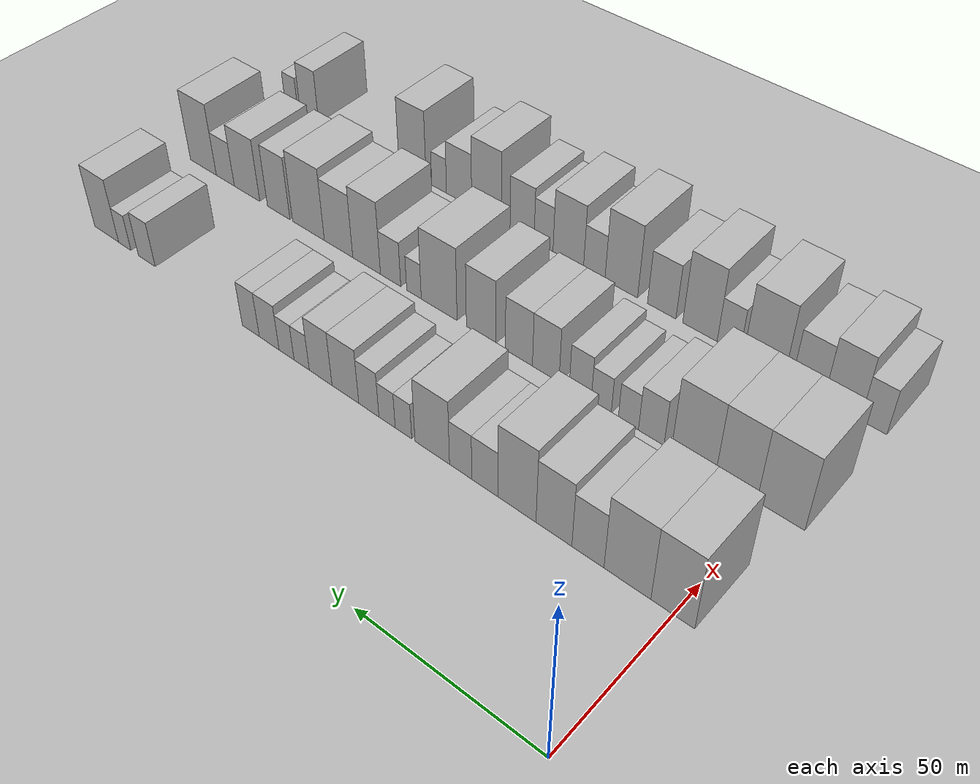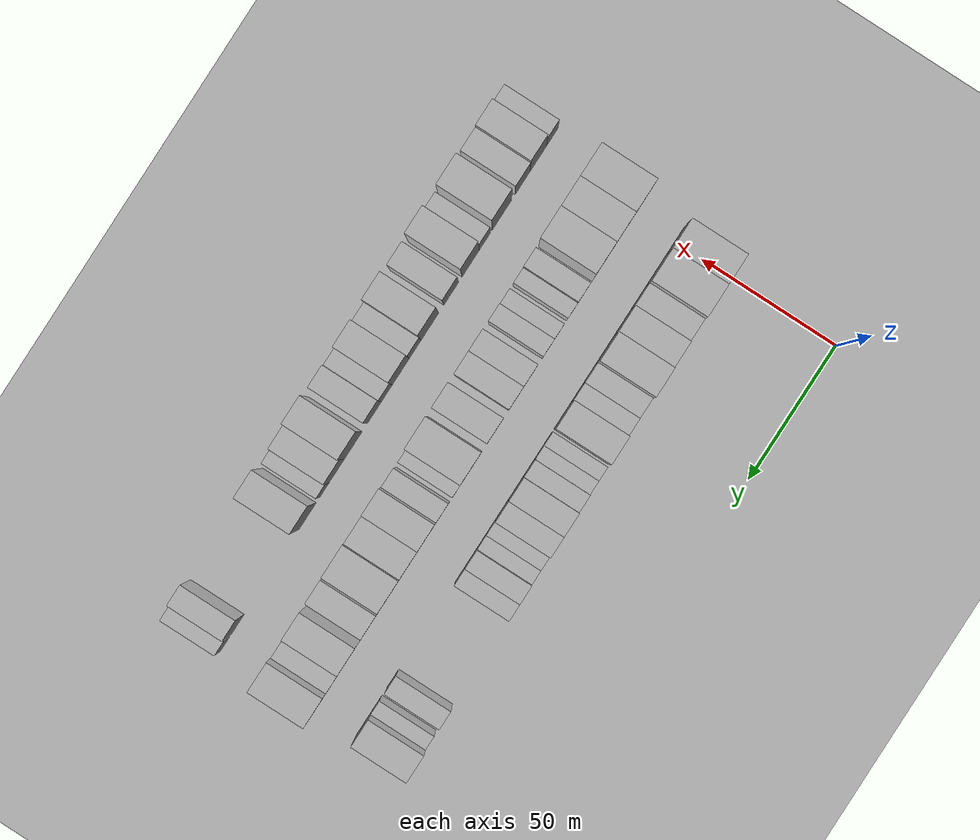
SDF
<sdf version="1.6">
 <world name="default">
  <include><name>ground_plane_1</name><uri>model://HANNAS_ground_plane</uri></include>
  <include>
   <name>ground_plane_2</name>
   <uri>model://HANNAS_ground_plane</uri>
   <pose>100 0 0  0 0 0</pose>
  </include>
  <model name="building_43">
   <static>1</static>
   <pose>50.0000 0.1248 0 0.000000 0.000000 0.000000</pose>
   <link name="link">
    <pose>0 0 12.00 0 0 0</pose>
    <collision name="collision"><geometry><box><size>20.0000 10.6258 24.0000</size></box></geometry></collision>
    <visual name="visual">
     <cast_shadows>0</cast_shadows>
     <geometry><box><size>20.0000 10.6258 24.0000</size></box></geometry>
     <material>
      <script>
       <uri>model://HANNAS_wall/materials/scripts</uri>
       <uri>model://HANNAS_wall/materials/textures</uri>
       <name>vrc/HANNAS_wall</name>
      </script>
     </material>
    </visual>
   </link>
  </model>
  <model name="building_44">
   <static>1</static>
   <pose>50.0000 11.3417 0 0.000000 0.000000 0.000000</pose>
   <link name="link">
    <pose>0 0 12.00 0 0 0</pose>
    <collision name="collision"><geometry><box><size>20.0000 11.8079 24.0000</size></box></geometry></collision>
    <visual name="visual">
     <cast_shadows>0</cast_shadows>
     <geometry><box><size>20.0000 11.8079 24.0000</size></box></geometry>
     <material>
      <script>
       <uri>model://HANNAS_wall/materials/scripts</uri>
       <uri>model://HANNAS_wall/materials/textures</uri>
       <name>vrc/HANNAS_wall</name>
      </script>
     </material>
    </visual>
   </link>
  </model>
  <model name="building_45">
   <static>1</static>
   <pose>50.0000 21.4188 0 0.000000 0.000000 0.000000</pose>
   <link name="link">
    <pose>0 0 9.00 0 0 0</pose>
    <collision name="collision"><geometry><box><size>20.0000 8.3464 18.0000</size></box></geometry></collision>
    <visual name="visual">
     <cast_shadows>0</cast_shadows>
     <geometry><box><size>20.0000 8.3464 18.0000</size></box></geometry>
     <material>
      <script>
       <uri>model://HANNAS_wall/materials/scripts</uri>
       <uri>model://HANNAS_wall/materials/textures</uri>
       <name>vrc/HANNAS_wall</name>
      </script>
     </material>
    </visual>
   </link>
  </model>
  <model name="building_46">
   <static>1</static>
   <pose>50.0000 30.3973 0 0.000000 0.000000 0.000000</pose>
   <link name="link">
    <pose>0 0 10.50 0 0 0</pose>
    <collision name="collision"><geometry><box><size>20.0000 9.6105 21.0000</size></box></geometry></collision>
    <visual name="visual">
     <cast_shadows>0</cast_shadows>
     <geometry><box><size>20.0000 9.6105 21.0000</size></box></geometry>
     <material>
      <script>
       <uri>model://HANNAS_wall/materials/scripts</uri>
       <uri>model://HANNAS_wall/materials/textures</uri>
       <name>vrc/HANNAS_wall</name>
      </script>
     </material>
    </visual>
   </link>
  </model>
  <model name="building_47">
   <static>1</static>
   <pose>50.0000 40.4916 0 0.000000 0.000000 0.000000</pose>
   <link name="link">
    <pose>0 0 12.00 0 0 0</pose>
    <collision name="collision"><geometry><box><size>20.0000 10.5781 24.0000</size></box></geometry></collision>
    <visual name="visual">
     <cast_shadows>0</cast_shadows>
     <geometry><box><size>20.0000 10.5781 24.0000</size></box></geometry>
     <material>
      <script>
       <uri>model://HANNAS_wall/materials/scripts</uri>
       <uri>model://HANNAS_wall/materials/textures</uri>
       <name>vrc/HANNAS_wall</name>
      </script>
     </material>
    </visual>
   </link>
  </model>
  <model name="building_48">
   <static>1</static>
   <pose>50.0000 49.4709 0 0.000000 0.000000 0.000000</pose>
   <link name="link">
    <pose>0 0 7.50 0 0 0</pose>
    <collision name="collision"><geometry><box><size>20.0000 7.3806 15.0000</size></box></geometry></collision>
    <visual name="visual">
     <cast_shadows>0</cast_shadows>
     <geometry><box><size>20.0000 7.3806 15.0000</size></box></geometry>
     <material>
      <script>
       <uri>model://HANNAS_wall/materials/scripts</uri>
       <uri>model://HANNAS_wall/materials/textures</uri>
       <name>vrc/HANNAS_wall</name>
      </script>
     </material>
    </visual>
   </link>
  </model>
  <model name="building_49">
   <static>1</static>
   <pose>50.0000 56.3877 0 0.000000 0.000000 0.000000</pose>
   <link name="link">
    <pose>0 0 7.50 0 0 0</pose>
    <collision name="collision"><geometry><box><size>20.0000 6.4530 15.0000</size></box></geometry></collision>
    <visual name="visual">
     <cast_shadows>0</cast_shadows>
     <geometry><box><size>20.0000 6.4530 15.0000</size></box></geometry>
     <material>
      <script>
       <uri>model://HANNAS_wall/materials/scripts</uri>
       <uri>model://HANNAS_wall/materials/textures</uri>
       <name>vrc/HANNAS_wall</name>
      </script>
     </material>
    </visual>
   </link>
  </model>
  <model name="building_50">
   <static>1</static>
   <pose>50.0000 64.7679 0 0.000000 0.000000 0.000000</pose>
   <link name="link">
    <pose>0 0 10.50 0 0 0</pose>
    <collision name="collision"><geometry><box><size>20.0000 10.3074 21.0000</size></box></geometry></collision>
    <visual name="visual">
     <cast_shadows>0</cast_shadows>
     <geometry><box><size>20.0000 10.3074 21.0000</size></box></geometry>
     <material>
      <script>
       <uri>model://HANNAS_wall/materials/scripts</uri>
       <uri>model://HANNAS_wall/materials/textures</uri>
       <name>vrc/HANNAS_wall</name>
      </script>
     </material>
    </visual>
   </link>
  </model>
  <model name="building_51">
   <static>1</static>
   <pose>50.0000 73.4463 0 0.000000 0.000000 0.000000</pose>
   <link name="link">
    <pose>0 0 6.00 0 0 0</pose>
    <collision name="collision"><geometry><box><size>20.0000 5.0494 12.0000</size></box></geometry></collision>
    <visual name="visual">
     <cast_shadows>0</cast_shadows>
     <geometry><box><size>20.0000 5.0494 12.0000</size></box></geometry>
     <material>
      <script>
       <uri>model://HANNAS_wall/materials/scripts</uri>
       <uri>model://HANNAS_wall/materials/textures</uri>
       <name>vrc/HANNAS_wall</name>
      </script>
     </material>
    </visual>
   </link>
  </model>
  <model name="building_52">
   <static>1</static>
   <pose>50.0000 78.5021 0 0.000000 0.000000 0.000000</pose>
   <link name="link">
    <pose>0 0 6.00 0 0 0</pose>
    <collision name="collision"><geometry><box><size>20.0000 5.0623 12.0000</size></box></geometry></collision>
    <visual name="visual">
     <cast_shadows>0</cast_shadows>
     <geometry><box><size>20.0000 5.0623 12.0000</size></box></geometry>
     <material>
      <script>
       <uri>model://HANNAS_wall/materials/scripts</uri>
       <uri>model://HANNAS_wall/materials/textures</uri>
       <name>vrc/HANNAS_wall</name>
      </script>
     </material>
    </visual>
   </link>
  </model>
  <model name="building_53">
   <static>1</static>
   <pose>50.0000 84.2243 0 0.000000 0.000000 0.000000</pose>
   <link name="link">
    <pose>0 0 7.50 0 0 0</pose>
    <collision name="collision"><geometry><box><size>20.0000 6.3821 15.0000</size></box></geometry></collision>
    <visual name="visual">
     <cast_shadows>0</cast_shadows>
     <geometry><box><size>20.0000 6.3821 15.0000</size></box></geometry>
     <material>
      <script>
       <uri>model://HANNAS_wall/materials/scripts</uri>
       <uri>model://HANNAS_wall/materials/textures</uri>
       <name>vrc/HANNAS_wall</name>
      </script>
     </material>
    </visual>
   </link>
  </model>
  <model name="building_54">
   <static>1</static>
   <pose>50.0000 91.7414 0 0.000000 0.000000 0.000000</pose>
   <link name="link">
    <pose>0 0 9.00 0 0 0</pose>
    <collision name="collision"><geometry><box><size>20.0000 8.6520 18.0000</size></box></geometry></collision>
    <visual name="visual">
     <cast_shadows>0</cast_shadows>
     <geometry><box><size>20.0000 8.6520 18.0000</size></box></geometry>
     <material>
      <script>
       <uri>model://HANNAS_wall/materials/scripts</uri>
       <uri>model://HANNAS_wall/materials/textures</uri>
       <name>vrc/HANNAS_wall</name>
      </script>
     </material>
    </visual>
   </link>
  </model>
  <model name="building_55">
   <static>1</static>
   <pose>50.0000 99.8377 0 0.000000 0.000000 0.000000</pose>
   <link name="link">
    <pose>0 0 9.00 0 0 0</pose>
    <collision name="collision"><geometry><box><size>20.0000 7.5408 18.0000</size></box></geometry></collision>
    <visual name="visual">
     <cast_shadows>0</cast_shadows>
     <geometry><box><size>20.0000 7.5408 18.0000</size></box></geometry>
     <material>
      <script>
       <uri>model://HANNAS_wall/materials/scripts</uri>
       <uri>model://HANNAS_wall/materials/textures</uri>
       <name>vrc/HANNAS_wall</name>
      </script>
     </material>
    </visual>
   </link>
  </model>
  <model name="building_56">
   <static>1</static>
   <pose>50.0000 106.1749 0 0.000000 0.000000 0.000000</pose>
   <link name="link">
    <pose>0 0 6.00 0 0 0</pose>
    <collision name="collision"><geometry><box><size>20.0000 5.1335 12.0000</size></box></geometry></collision>
    <visual name="visual">
     <cast_shadows>0</cast_shadows>
     <geometry><box><size>20.0000 5.1335 12.0000</size></box></geometry>
     <material>
      <script>
       <uri>model://HANNAS_wall/materials/scripts</uri>
       <uri>model://HANNAS_wall/materials/textures</uri>
       <name>vrc/HANNAS_wall</name>
      </script>
     </material>
    </visual>
   </link>
  </model>
  <model name="building_57">
   <static>1</static>
   <pose>50.0000 111.3071 0 0.000000 0.000000 0.000000</pose>
   <link name="link">
    <pose>0 0 6.00 0 0 0</pose>
    <collision name="collision"><geometry><box><size>20.0000 5.1310 12.0000</size></box></geometry></collision>
    <visual name="visual">
     <cast_shadows>0</cast_shadows>
     <geometry><box><size>20.0000 5.1310 12.0000</size></box></geometry>
     <material>
      <script>
       <uri>model://HANNAS_wall/materials/scripts</uri>
       <uri>model://HANNAS_wall/materials/textures</uri>
       <name>vrc/HANNAS_wall</name>
      </script>
     </material>
    </visual>
   </link>
  </model>
  <model name="building_58">
   <static>1</static>
   <pose>50.0000 117.3159 0 0.000000 0.000000 0.000000</pose>
   <link name="link">
    <pose>0 0 7.50 0 0 0</pose>
    <collision name="collision"><geometry><box><size>20.0000 6.8867 15.0000</size></box></geometry></collision>
    <visual name="visual">
     <cast_shadows>0</cast_shadows>
     <geometry><box><size>20.0000 6.8867 15.0000</size></box></geometry>
     <material>
      <script>
       <uri>model://HANNAS_wall/materials/scripts</uri>
       <uri>model://HANNAS_wall/materials/textures</uri>
       <name>vrc/HANNAS_wall</name>
      </script>
     </material>
    </visual>
   </link>
  </model>
  <model name="building_59">
   <static>1</static>
   <pose>50.0000 123.7783 0 0.000000 0.000000 0.000000</pose>
   <link name="link">
    <pose>0 0 7.50 0 0 0</pose>
    <collision name="collision"><geometry><box><size>20.0000 6.0380 15.0000</size></box></geometry></collision>
    <visual name="visual">
     <cast_shadows>0</cast_shadows>
     <geometry><box><size>20.0000 6.0380 15.0000</size></box></geometry>
     <material>
      <script>
       <uri>model://HANNAS_wall/materials/scripts</uri>
       <uri>model://HANNAS_wall/materials/textures</uri>
       <name>vrc/HANNAS_wall</name>
      </script>
     </material>
    </visual>
   </link>
  </model>
  <model name="building_60">
   <static>1</static>
   <pose>50.0000 162.7723 0 0.000000 0.000000 0.000000</pose>
   <link name="link">
    <pose>0 0 7.50 0 0 0</pose>
    <collision name="collision"><geometry><box><size>20.0000 6.6500 15.0000</size></box></geometry></collision>
    <visual name="visual">
     <cast_shadows>0</cast_shadows>
     <geometry><box><size>20.0000 6.6500 15.0000</size></box></geometry>
     <material>
      <script>
       <uri>model://HANNAS_wall/materials/scripts</uri>
       <uri>model://HANNAS_wall/materials/textures</uri>
       <name>vrc/HANNAS_wall</name>
      </script>
     </material>
    </visual>
   </link>
  </model>
  <model name="building_61">
   <static>1</static>
   <pose>50.0000 171.5801 0 0.000000 0.000000 0.000000</pose>
   <link name="link">
    <pose>0 0 6.00 0 0 0</pose>
    <collision name="collision"><geometry><box><size>20.0000 4.9657 12.0000</size></box></geometry></collision>
    <visual name="visual">
     <cast_shadows>0</cast_shadows>
     <geometry><box><size>20.0000 4.9657 12.0000</size></box></geometry>
     <material>
      <script>
       <uri>model://HANNAS_wall/materials/scripts</uri>
       <uri>model://HANNAS_wall/materials/textures</uri>
       <name>vrc/HANNAS_wall</name>
      </script>
     </material>
    </visual>
   </link>
  </model>
  <model name="building_62">
   <static>1</static>
   <pose>50.0000 178.9622 0 0.000000 0.000000 0.000000</pose>
   <link name="link">
    <pose>0 0 10.50 0 0 0</pose>
    <collision name="collision"><geometry><box><size>20.0000 9.7984 21.0000</size></box></geometry></collision>
    <visual name="visual">
     <cast_shadows>0</cast_shadows>
     <geometry><box><size>20.0000 9.7984 21.0000</size></box></geometry>
     <material>
      <script>
       <uri>model://HANNAS_wall/materials/scripts</uri>
       <uri>model://HANNAS_wall/materials/textures</uri>
       <name>vrc/HANNAS_wall</name>
      </script>
     </material>
    </visual>
   </link>
  </model>
  <model name="building_123">
   <static>1</static>
   <pose>85.0000 -3.5434 0 0.000000 0.000000 0.000000</pose>
   <link name="link">
    <pose>0 0 12.00 0 0 0</pose>
    <collision name="collision"><geometry><box><size>20.0000 11.8612 24.0000</size></box></geometry></collision>
    <visual name="visual">
     <cast_shadows>0</cast_shadows>
     <geometry><box><size>20.0000 11.8612 24.0000</size></box></geometry>
     <material>
      <script>
       <uri>model://HANNAS_wall/materials/scripts</uri>
       <uri>model://HANNAS_wall/materials/textures</uri>
       <name>vrc/HANNAS_wall</name>
      </script>
     </material>
    </visual>
   </link>
  </model>
  <model name="building_124">
   <static>1</static>
   <pose>85.0000 7.7006 0 0.000000 0.000000 0.000000</pose>
   <link name="link">
    <pose>0 0 12.00 0 0 0</pose>
    <collision name="collision"><geometry><box><size>20.0000 10.6269 24.0000</size></box></geometry></collision>
    <visual name="visual">
     <cast_shadows>0</cast_shadows>
     <geometry><box><size>20.0000 10.6269 24.0000</size></box></geometry>
     <material>
      <script>
       <uri>model://HANNAS_wall/materials/scripts</uri>
       <uri>model://HANNAS_wall/materials/textures</uri>
       <name>vrc/HANNAS_wall</name>
      </script>
     </material>
    </visual>
   </link>
  </model>
  <model name="building_125">
   <static>1</static>
   <pose>85.0000 18.8179 0 0.000000 0.000000 0.000000</pose>
   <link name="link">
    <pose>0 0 12.00 0 0 0</pose>
    <collision name="collision"><geometry><box><size>20.0000 11.6077 24.0000</size></box></geometry></collision>
    <visual name="visual">
     <cast_shadows>0</cast_shadows>
     <geometry><box><size>20.0000 11.6077 24.0000</size></box></geometry>
     <material>
      <script>
       <uri>model://HANNAS_wall/materials/scripts</uri>
       <uri>model://HANNAS_wall/materials/textures</uri>
       <name>vrc/HANNAS_wall</name>
      </script>
     </material>
    </visual>
   </link>
  </model>
  <model name="building_126">
   <static>1</static>
   <pose>85.0000 30.1323 0 0.000000 0.000000 0.000000</pose>
   <link name="link">
    <pose>0 0 7.50 0 0 0</pose>
    <collision name="collision"><geometry><box><size>20.0000 7.0212 15.0000</size></box></geometry></collision>
    <visual name="visual">
     <cast_shadows>0</cast_shadows>
     <geometry><box><size>20.0000 7.0212 15.0000</size></box></geometry>
     <material>
      <script>
       <uri>model://HANNAS_wall/materials/scripts</uri>
       <uri>model://HANNAS_wall/materials/textures</uri>
       <name>vrc/HANNAS_wall</name>
      </script>
     </material>
    </visual>
   </link>
  </model>
  <model name="building_127">
   <static>1</static>
   <pose>85.0000 36.4555 0 0.000000 0.000000 0.000000</pose>
   <link name="link">
    <pose>0 0 6.00 0 0 0</pose>
    <collision name="collision"><geometry><box><size>20.0000 5.6251 12.0000</size></box></geometry></collision>
    <visual name="visual">
     <cast_shadows>0</cast_shadows>
     <geometry><box><size>20.0000 5.6251 12.0000</size></box></geometry>
     <material>
      <script>
       <uri>model://HANNAS_wall/materials/scripts</uri>
       <uri>model://HANNAS_wall/materials/textures</uri>
       <name>vrc/HANNAS_wall</name>
      </script>
     </material>
    </visual>
   </link>
  </model>
  <model name="building_128">
   <static>1</static>
   <pose>85.0000 44.1290 0 0.000000 0.000000 0.000000</pose>
   <link name="link">
    <pose>0 0 6.00 0 0 0</pose>
    <collision name="collision"><geometry><box><size>20.0000 5.7220 12.0000</size></box></geometry></collision>
    <visual name="visual">
     <cast_shadows>0</cast_shadows>
     <geometry><box><size>20.0000 5.7220 12.0000</size></box></geometry>
     <material>
      <script>
       <uri>model://HANNAS_wall/materials/scripts</uri>
       <uri>model://HANNAS_wall/materials/textures</uri>
       <name>vrc/HANNAS_wall</name>
      </script>
     </material>
    </visual>
   </link>
  </model>
  <model name="building_129">
   <static>1</static>
   <pose>85.0000 50.1951 0 0.000000 0.000000 0.000000</pose>
   <link name="link">
    <pose>0 0 7.50 0 0 0</pose>
    <collision name="collision"><geometry><box><size>20.0000 6.4101 15.0000</size></box></geometry></collision>
    <visual name="visual">
     <cast_shadows>0</cast_shadows>
     <geometry><box><size>20.0000 6.4101 15.0000</size></box></geometry>
     <material>
      <script>
       <uri>model://HANNAS_wall/materials/scripts</uri>
       <uri>model://HANNAS_wall/materials/textures</uri>
       <name>vrc/HANNAS_wall</name>
      </script>
     </material>
    </visual>
   </link>
  </model>
  <model name="building_130">
   <static>1</static>
   <pose>85.0000 60.3814 0 0.000000 0.000000 0.000000</pose>
   <link name="link">
    <pose>0 0 9.00 0 0 0</pose>
    <collision name="collision"><geometry><box><size>20.0000 7.9625 18.0000</size></box></geometry></collision>
    <visual name="visual">
     <cast_shadows>0</cast_shadows>
     <geometry><box><size>20.0000 7.9625 18.0000</size></box></geometry>
     <material>
      <script>
       <uri>model://HANNAS_wall/materials/scripts</uri>
       <uri>model://HANNAS_wall/materials/textures</uri>
       <name>vrc/HANNAS_wall</name>
      </script>
     </material>
    </visual>
   </link>
  </model>
  <model name="building_131">
   <static>1</static>
   <pose>85.0000 68.5442 0 0.000000 0.000000 0.000000</pose>
   <link name="link">
    <pose>0 0 9.00 0 0 0</pose>
    <collision name="collision"><geometry><box><size>20.0000 8.3631 18.0000</size></box></geometry></collision>
    <visual name="visual">
     <cast_shadows>0</cast_shadows>
     <geometry><box><size>20.0000 8.3631 18.0000</size></box></geometry>
     <material>
      <script>
       <uri>model://HANNAS_wall/materials/scripts</uri>
       <uri>model://HANNAS_wall/materials/textures</uri>
       <name>vrc/HANNAS_wall</name>
      </script>
     </material>
    </visual>
   </link>
  </model>
  <model name="building_132">
   <static>1</static>
   <pose>85.0000 80.3539 0 0.000000 0.000000 0.000000</pose>
   <link name="link">
    <pose>0 0 10.50 0 0 0</pose>
    <collision name="collision"><geometry><box><size>20.0000 9.2563 21.0000</size></box></geometry></collision>
    <visual name="visual">
     <cast_shadows>0</cast_shadows>
     <geometry><box><size>20.0000 9.2563 21.0000</size></box></geometry>
     <material>
      <script>
       <uri>model://HANNAS_wall/materials/scripts</uri>
       <uri>model://HANNAS_wall/materials/textures</uri>
       <name>vrc/HANNAS_wall</name>
      </script>
     </material>
    </visual>
   </link>
  </model>
  <model name="building_133">
   <static>1</static>
   <pose>85.0000 93.8886 0 0.000000 0.000000 0.000000</pose>
   <link name="link">
    <pose>0 0 12.00 0 0 0</pose>
    <collision name="collision"><geometry><box><size>20.0000 11.8132 24.0000</size></box></geometry></collision>
    <visual name="visual">
     <cast_shadows>0</cast_shadows>
     <geometry><box><size>20.0000 11.8132 24.0000</size></box></geometry>
     <material>
      <script>
       <uri>model://HANNAS_wall/materials/scripts</uri>
       <uri>model://HANNAS_wall/materials/textures</uri>
       <name>vrc/HANNAS_wall</name>
      </script>
     </material>
    </visual>
   </link>
  </model>
  <model name="building_134">
   <static>1</static>
   <pose>85.0000 102.2550 0 0.000000 0.000000 0.000000</pose>
   <link name="link">
    <pose>0 0 6.00 0 0 0</pose>
    <collision name="collision"><geometry><box><size>20.0000 4.9196 12.0000</size></box></geometry></collision>
    <visual name="visual">
     <cast_shadows>0</cast_shadows>
     <geometry><box><size>20.0000 4.9196 12.0000</size></box></geometry>
     <material>
      <script>
       <uri>model://HANNAS_wall/materials/scripts</uri>
       <uri>model://HANNAS_wall/materials/textures</uri>
       <name>vrc/HANNAS_wall</name>
      </script>
     </material>
    </visual>
   </link>
  </model>
  <model name="building_135">
   <static>1</static>
   <pose>85.0000 110.2170 0 0.000000 0.000000 0.000000</pose>
   <link name="link">
    <pose>0 0 7.50 0 0 0</pose>
    <collision name="collision"><geometry><box><size>20.0000 7.0044 15.0000</size></box></geometry></collision>
    <visual name="visual">
     <cast_shadows>0</cast_shadows>
     <geometry><box><size>20.0000 7.0044 15.0000</size></box></geometry>
     <material>
      <script>
       <uri>model://HANNAS_wall/materials/scripts</uri>
       <uri>model://HANNAS_wall/materials/textures</uri>
       <name>vrc/HANNAS_wall</name>
      </script>
     </material>
    </visual>
   </link>
  </model>
  <model name="building_136">
   <static>1</static>
   <pose>85.0000 118.5995 0 0.000000 0.000000 0.000000</pose>
   <link name="link">
    <pose>0 0 12.00 0 0 0</pose>
    <collision name="collision"><geometry><box><size>20.0000 9.7606 24.0000</size></box></geometry></collision>
    <visual name="visual">
     <cast_shadows>0</cast_shadows>
     <geometry><box><size>20.0000 9.7606 24.0000</size></box></geometry>
     <material>
      <script>
       <uri>model://HANNAS_wall/materials/scripts</uri>
       <uri>model://HANNAS_wall/materials/textures</uri>
       <name>vrc/HANNAS_wall</name>
      </script>
     </material>
    </visual>
   </link>
  </model>
  <model name="building_137">
   <static>1</static>
   <pose>85.0000 128.6239 0 0.000000 0.000000 0.000000</pose>
   <link name="link">
    <pose>0 0 10.50 0 0 0</pose>
    <collision name="collision"><geometry><box><size>20.0000 10.2883 21.0000</size></box></geometry></collision>
    <visual name="visual">
     <cast_shadows>0</cast_shadows>
     <geometry><box><size>20.0000 10.2883 21.0000</size></box></geometry>
     <material>
      <script>
       <uri>model://HANNAS_wall/materials/scripts</uri>
       <uri>model://HANNAS_wall/materials/textures</uri>
       <name>vrc/HANNAS_wall</name>
      </script>
     </material>
    </visual>
   </link>
  </model>
  <model name="building_138">
   <static>1</static>
   <pose>85.0000 139.6937 0 0.000000 0.000000 0.000000</pose>
   <link name="link">
    <pose>0 0 12.00 0 0 0</pose>
    <collision name="collision"><geometry><box><size>20.0000 11.8513 24.0000</size></box></geometry></collision>
    <visual name="visual">
     <cast_shadows>0</cast_shadows>
     <geometry><box><size>20.0000 11.8513 24.0000</size></box></geometry>
     <material>
      <script>
       <uri>model://HANNAS_wall/materials/scripts</uri>
       <uri>model://HANNAS_wall/materials/textures</uri>
       <name>vrc/HANNAS_wall</name>
      </script>
     </material>
    </visual>
   </link>
  </model>
  <model name="building_139">
   <static>1</static>
   <pose>85.0000 150.9417 0 0.000000 0.000000 0.000000</pose>
   <link name="link">
    <pose>0 0 10.50 0 0 0</pose>
    <collision name="collision"><geometry><box><size>20.0000 8.6446 21.0000</size></box></geometry></collision>
    <visual name="visual">
     <cast_shadows>0</cast_shadows>
     <geometry><box><size>20.0000 8.6446 21.0000</size></box></geometry>
     <material>
      <script>
       <uri>model://HANNAS_wall/materials/scripts</uri>
       <uri>model://HANNAS_wall/materials/textures</uri>
       <name>vrc/HANNAS_wall</name>
      </script>
     </material>
    </visual>
   </link>
  </model>
  <model name="building_140">
   <static>1</static>
   <pose>85.0000 163.3012 0 0.000000 0.000000 0.000000</pose>
   <link name="link">
    <pose>0 0 10.50 0 0 0</pose>
    <collision name="collision"><geometry><box><size>20.0000 10.0744 21.0000</size></box></geometry></collision>
    <visual name="visual">
     <cast_shadows>0</cast_shadows>
     <geometry><box><size>20.0000 10.0744 21.0000</size></box></geometry>
     <material>
      <script>
       <uri>model://HANNAS_wall/materials/scripts</uri>
       <uri>model://HANNAS_wall/materials/textures</uri>
       <name>vrc/HANNAS_wall</name>
      </script>
     </material>
    </visual>
   </link>
  </model>
  <model name="building_141">
   <static>1</static>
   <pose>85.0000 171.9812 0 0.000000 0.000000 0.000000</pose>
   <link name="link">
    <pose>0 0 7.50 0 0 0</pose>
    <collision name="collision"><geometry><box><size>20.0000 7.2855 15.0000</size></box></geometry></collision>
    <visual name="visual">
     <cast_shadows>0</cast_shadows>
     <geometry><box><size>20.0000 7.2855 15.0000</size></box></geometry>
     <material>
      <script>
       <uri>model://HANNAS_wall/materials/scripts</uri>
       <uri>model://HANNAS_wall/materials/textures</uri>
       <name>vrc/HANNAS_wall</name>
      </script>
     </material>
    </visual>
   </link>
  </model>
  <model name="building_142">
   <static>1</static>
   <pose>85.0000 180.9536 0 0.000000 0.000000 0.000000</pose>
   <link name="link">
    <pose>0 0 12.00 0 0 0</pose>
    <collision name="collision"><geometry><box><size>20.0000 10.6593 24.0000</size></box></geometry></collision>
    <visual name="visual">
     <cast_shadows>0</cast_shadows>
     <geometry><box><size>20.0000 10.6593 24.0000</size></box></geometry>
     <material>
      <script>
       <uri>model://HANNAS_wall/materials/scripts</uri>
       <uri>model://HANNAS_wall/materials/textures</uri>
       <name>vrc/HANNAS_wall</name>
      </script>
     </material>
    </visual>
   </link>
  </model>
  <model name="building_198">
   <static>1</static>
   <pose>120.0000 -6.5001 0 0.000000 0.000000 0.000000</pose>
   <link name="link">
    <pose>0 0 7.50 0 0 0</pose>
    <collision name="collision"><geometry><box><size>20.0000 6.6826 15.0000</size></box></geometry></collision>
    <visual name="visual">
     <cast_shadows>0</cast_shadows>
     <geometry><box><size>20.0000 6.6826 15.0000</size></box></geometry>
     <material>
      <script>
       <uri>model://HANNAS_wall/materials/scripts</uri>
       <uri>model://HANNAS_wall/materials/textures</uri>
       <name>vrc/HANNAS_wall</name>
      </script>
     </material>
    </visual>
   </link>
  </model>
  <model name="building_199">
   <static>1</static>
   <pose>120.0000 1.5913 0 0.000000 0.000000 0.000000</pose>
   <link name="link">
    <pose>0 0 10.50 0 0 0</pose>
    <collision name="collision"><geometry><box><size>20.0000 9.5003 21.0000</size></box></geometry></collision>
    <visual name="visual">
     <cast_shadows>0</cast_shadows>
     <geometry><box><size>20.0000 9.5003 21.0000</size></box></geometry>
     <material>
      <script>
       <uri>model://HANNAS_wall/materials/scripts</uri>
       <uri>model://HANNAS_wall/materials/textures</uri>
       <name>vrc/HANNAS_wall</name>
      </script>
     </material>
    </visual>
   </link>
  </model>
  <model name="building_200">
   <static>1</static>
   <pose>120.0000 10.6098 0 0.000000 0.000000 0.000000</pose>
   <link name="link">
    <pose>0 0 9.00 0 0 0</pose>
    <collision name="collision"><geometry><box><size>20.0000 8.5367 18.0000</size></box></geometry></collision>
    <visual name="visual">
     <cast_shadows>0</cast_shadows>
     <geometry><box><size>20.0000 8.5367 18.0000</size></box></geometry>
     <material>
      <script>
       <uri>model://HANNAS_wall/materials/scripts</uri>
       <uri>model://HANNAS_wall/materials/textures</uri>
       <name>vrc/HANNAS_wall</name>
      </script>
     </material>
    </visual>
   </link>
  </model>
  <model name="building_201">
   <static>1</static>
   <pose>120.0000 22.5046 0 0.000000 0.000000 0.000000</pose>
   <link name="link">
    <pose>0 0 12.00 0 0 0</pose>
    <collision name="collision"><geometry><box><size>20.0000 11.2528 24.0000</size></box></geometry></collision>
    <visual name="visual">
     <cast_shadows>0</cast_shadows>
     <geometry><box><size>20.0000 11.2528 24.0000</size></box></geometry>
     <material>
      <script>
       <uri>model://HANNAS_wall/materials/scripts</uri>
       <uri>model://HANNAS_wall/materials/textures</uri>
       <name>vrc/HANNAS_wall</name>
      </script>
     </material>
    </visual>
   </link>
  </model>
  <model name="building_202">
   <static>1</static>
   <pose>120.0000 32.3327 0 0.000000 0.000000 0.000000</pose>
   <link name="link">
    <pose>0 0 7.50 0 0 0</pose>
    <collision name="collision"><geometry><box><size>20.0000 6.4035 15.0000</size></box></geometry></collision>
    <visual name="visual">
     <cast_shadows>0</cast_shadows>
     <geometry><box><size>20.0000 6.4035 15.0000</size></box></geometry>
     <material>
      <script>
       <uri>model://HANNAS_wall/materials/scripts</uri>
       <uri>model://HANNAS_wall/materials/textures</uri>
       <name>vrc/HANNAS_wall</name>
      </script>
     </material>
    </visual>
   </link>
  </model>
  <model name="building_203">
   <static>1</static>
   <pose>120.0000 40.5234 0 0.000000 0.000000 0.000000</pose>
   <link name="link">
    <pose>0 0 12.00 0 0 0</pose>
    <collision name="collision"><geometry><box><size>20.0000 9.9778 24.0000</size></box></geometry></collision>
    <visual name="visual">
     <cast_shadows>0</cast_shadows>
     <geometry><box><size>20.0000 9.9778 24.0000</size></box></geometry>
     <material>
      <script>
       <uri>model://HANNAS_wall/materials/scripts</uri>
       <uri>model://HANNAS_wall/materials/textures</uri>
       <name>vrc/HANNAS_wall</name>
      </script>
     </material>
    </visual>
   </link>
  </model>
  <model name="building_204">
   <static>1</static>
   <pose>120.0000 51.7622 0 0.000000 0.000000 0.000000</pose>
   <link name="link">
    <pose>0 0 9.00 0 0 0</pose>
    <collision name="collision"><geometry><box><size>20.0000 8.4999 18.0000</size></box></geometry></collision>
    <visual name="visual">
     <cast_shadows>0</cast_shadows>
     <geometry><box><size>20.0000 8.4999 18.0000</size></box></geometry>
     <material>
      <script>
       <uri>model://HANNAS_wall/materials/scripts</uri>
       <uri>model://HANNAS_wall/materials/textures</uri>
       <name>vrc/HANNAS_wall</name>
      </script>
     </material>
    </visual>
   </link>
  </model>
  <model name="building_205">
   <static>1</static>
   <pose>120.0000 64.0637 0 0.000000 0.000000 0.000000</pose>
   <link name="link">
    <pose>0 0 12.00 0 0 0</pose>
    <collision name="collision"><geometry><box><size>20.0000 10.1029 24.0000</size></box></geometry></collision>
    <visual name="visual">
     <cast_shadows>0</cast_shadows>
     <geometry><box><size>20.0000 10.1029 24.0000</size></box></geometry>
     <material>
      <script>
       <uri>model://HANNAS_wall/materials/scripts</uri>
       <uri>model://HANNAS_wall/materials/textures</uri>
       <name>vrc/HANNAS_wall</name>
      </script>
     </material>
    </visual>
   </link>
  </model>
  <model name="building_206">
   <static>1</static>
   <pose>120.0000 72.5094 0 0.000000 0.000000 0.000000</pose>
   <link name="link">
    <pose>0 0 7.50 0 0 0</pose>
    <collision name="collision"><geometry><box><size>20.0000 6.7886 15.0000</size></box></geometry></collision>
    <visual name="visual">
     <cast_shadows>0</cast_shadows>
     <geometry><box><size>20.0000 6.7886 15.0000</size></box></geometry>
     <material>
      <script>
       <uri>model://HANNAS_wall/materials/scripts</uri>
       <uri>model://HANNAS_wall/materials/textures</uri>
       <name>vrc/HANNAS_wall</name>
      </script>
     </material>
    </visual>
   </link>
  </model>
  <model name="building_207">
   <static>1</static>
   <pose>120.0000 80.8338 0 0.000000 0.000000 0.000000</pose>
   <link name="link">
    <pose>0 0 10.50 0 0 0</pose>
    <collision name="collision"><geometry><box><size>20.0000 9.8602 21.0000</size></box></geometry></collision>
    <visual name="visual">
     <cast_shadows>0</cast_shadows>
     <geometry><box><size>20.0000 9.8602 21.0000</size></box></geometry>
     <material>
      <script>
       <uri>model://HANNAS_wall/materials/scripts</uri>
       <uri>model://HANNAS_wall/materials/textures</uri>
       <name>vrc/HANNAS_wall</name>
      </script>
     </material>
    </visual>
   </link>
  </model>
  <model name="building_208">
   <static>1</static>
   <pose>120.0000 88.8879 0 0.000000 0.000000 0.000000</pose>
   <link name="link">
    <pose>0 0 7.50 0 0 0</pose>
    <collision name="collision"><geometry><box><size>20.0000 6.2479 15.0000</size></box></geometry></collision>
    <visual name="visual">
     <cast_shadows>0</cast_shadows>
     <geometry><box><size>20.0000 6.2479 15.0000</size></box></geometry>
     <material>
      <script>
       <uri>model://HANNAS_wall/materials/scripts</uri>
       <uri>model://HANNAS_wall/materials/textures</uri>
       <name>vrc/HANNAS_wall</name>
      </script>
     </material>
    </visual>
   </link>
  </model>
  <model name="building_209">
   <static>1</static>
   <pose>120.0000 96.0852 0 0.000000 0.000000 0.000000</pose>
   <link name="link">
    <pose>0 0 9.00 0 0 0</pose>
    <collision name="collision"><geometry><box><size>20.0000 8.1467 18.0000</size></box></geometry></collision>
    <visual name="visual">
     <cast_shadows>0</cast_shadows>
     <geometry><box><size>20.0000 8.1467 18.0000</size></box></geometry>
     <material>
      <script>
       <uri>model://HANNAS_wall/materials/scripts</uri>
       <uri>model://HANNAS_wall/materials/textures</uri>
       <name>vrc/HANNAS_wall</name>
      </script>
     </material>
    </visual>
   </link>
  </model>
  <model name="building_210">
   <static>1</static>
   <pose>120.0000 108.2799 0 0.000000 0.000000 0.000000</pose>
   <link name="link">
    <pose>0 0 12.00 0 0 0</pose>
    <collision name="collision"><geometry><box><size>20.0000 10.2426 24.0000</size></box></geometry></collision>
    <visual name="visual">
     <cast_shadows>0</cast_shadows>
     <geometry><box><size>20.0000 10.2426 24.0000</size></box></geometry>
     <material>
      <script>
       <uri>model://HANNAS_wall/materials/scripts</uri>
       <uri>model://HANNAS_wall/materials/textures</uri>
       <name>vrc/HANNAS_wall</name>
      </script>
     </material>
    </visual>
   </link>
  </model>
  <model name="building_211">
   <static>1</static>
   <pose>120.0000 117.8800 0 0.000000 0.000000 0.000000</pose>
   <link name="link">
    <pose>0 0 9.00 0 0 0</pose>
    <collision name="collision"><geometry><box><size>20.0000 8.9575 18.0000</size></box></geometry></collision>
    <visual name="visual">
     <cast_shadows>0</cast_shadows>
     <geometry><box><size>20.0000 8.9575 18.0000</size></box></geometry>
     <material>
      <script>
       <uri>model://HANNAS_wall/materials/scripts</uri>
       <uri>model://HANNAS_wall/materials/textures</uri>
       <name>vrc/HANNAS_wall</name>
      </script>
     </material>
    </visual>
   </link>
  </model>
  <model name="building_212">
   <static>1</static>
   <pose>120.0000 125.0372 0 0.000000 0.000000 0.000000</pose>
   <link name="link">
    <pose>0 0 6.00 0 0 0</pose>
    <collision name="collision"><geometry><box><size>20.0000 5.3568 12.0000</size></box></geometry></collision>
    <visual name="visual">
     <cast_shadows>0</cast_shadows>
     <geometry><box><size>20.0000 5.3568 12.0000</size></box></geometry>
     <material>
      <script>
       <uri>model://HANNAS_wall/materials/scripts</uri>
       <uri>model://HANNAS_wall/materials/textures</uri>
       <name>vrc/HANNAS_wall</name>
      </script>
     </material>
    </visual>
   </link>
  </model>
  <model name="building_213">
   <static>1</static>
   <pose>120.0000 134.7540 0 0.000000 0.000000 0.000000</pose>
   <link name="link">
    <pose>0 0 12.00 0 0 0</pose>
    <collision name="collision"><geometry><box><size>20.0000 10.0768 24.0000</size></box></geometry></collision>
    <visual name="visual">
     <cast_shadows>0</cast_shadows>
     <geometry><box><size>20.0000 10.0768 24.0000</size></box></geometry>
     <material>
      <script>
       <uri>model://HANNAS_wall/materials/scripts</uri>
       <uri>model://HANNAS_wall/materials/textures</uri>
       <name>vrc/HANNAS_wall</name>
      </script>
     </material>
    </visual>
   </link>
  </model>
  <model name="building_214">
   <static>1</static>
   <pose>120.0000 175.0494 0 0.000000 0.000000 0.000000</pose>
   <link name="link">
    <pose>0 0 9.00 0 0 0</pose>
    <collision name="collision"><geometry><box><size>20.0000 7.5047 18.0000</size></box></geometry></collision>
    <visual name="visual">
     <cast_shadows>0</cast_shadows>
     <geometry><box><size>20.0000 7.5047 18.0000</size></box></geometry>
     <material>
      <script>
       <uri>model://HANNAS_wall/materials/scripts</uri>
       <uri>model://HANNAS_wall/materials/textures</uri>
       <name>vrc/HANNAS_wall</name>
      </script>
     </material>
    </visual>
   </link>
  </model>
  <model name="building_215">
   <static>1</static>
   <pose>120.0000 182.4016 0 0.000000 0.000000 0.000000</pose>
   <link name="link">
    <pose>0 0 6.00 0 0 0</pose>
    <collision name="collision"><geometry><box><size>20.0000 5.1996 12.0000</size></box></geometry></collision>
    <visual name="visual">
     <cast_shadows>0</cast_shadows>
     <geometry><box><size>20.0000 5.1996 12.0000</size></box></geometry>
     <material>
      <script>
       <uri>model://HANNAS_wall/materials/scripts</uri>
       <uri>model://HANNAS_wall/materials/textures</uri>
       <name>vrc/HANNAS_wall</name>
      </script>
     </material>
    </visual>
   </link>
  </model>
 </world>
</sdf>
